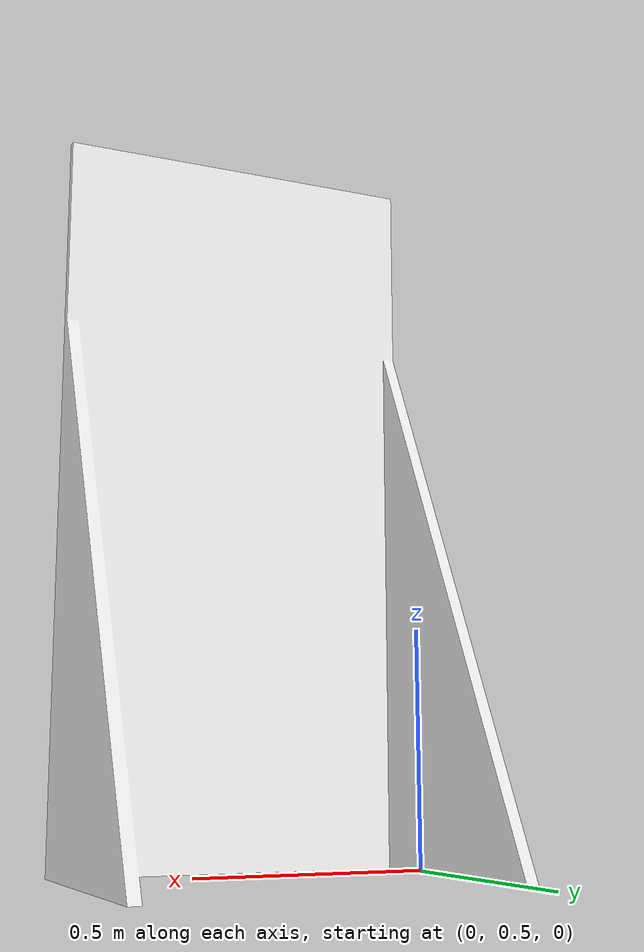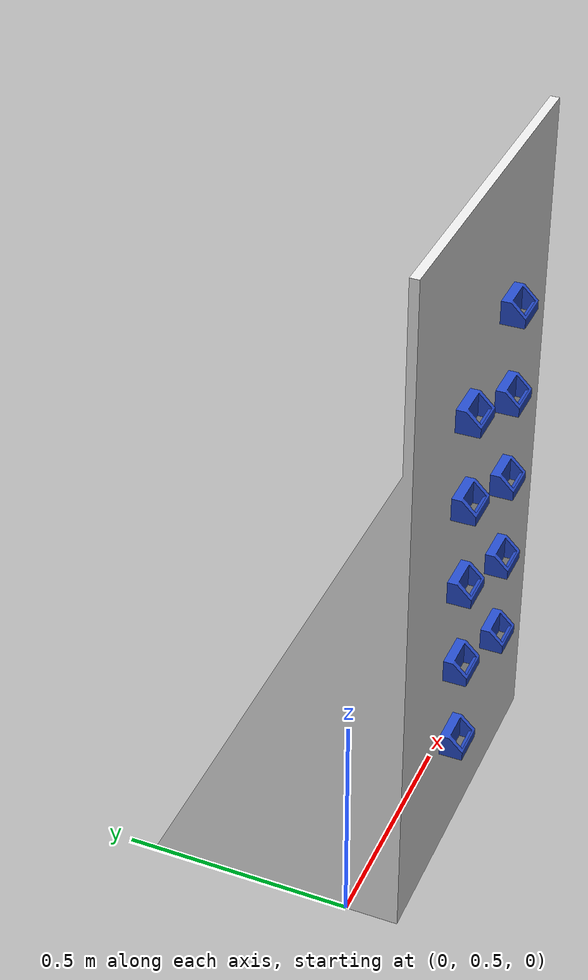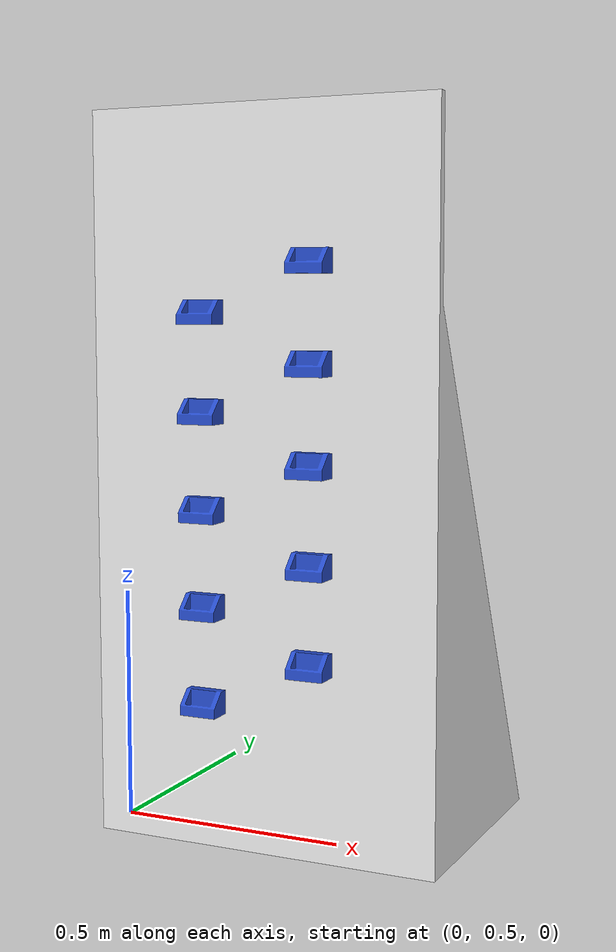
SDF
<?xml version="1.0" ?>
<sdf version="1.6">
  <model name="climbing_wall">
    <link name="wall">
      <inertial>
        <pose>0.381 0.472265 0.605557 0 0 0</pose>
        <mass>288.901</mass>
        <inertia>
          <ixx>56.1647</ixx>
          <ixy>2.94838e-15</ixy>
          <ixz>-0.00718802</ixz>
          <iyy>75.9579</iyy>
          <iyz>7.05155</iyz>
          <izz>28.5354</izz>
        </inertia>
      </inertial>

      <visual name="jug_hold_visual_1">
        <pose>0.501 0.386449 0.787 0 -0 0</pose>
        <geometry>
          <mesh>
            <uri>package://climbbot3_gz/models/climbing_wall/assets/jug_hold.stl</uri>
          </mesh>
        </geometry>
        <material>
          <script>
            <uri>file://media/materials/scripts/gazebo.material</uri>
            <name>Gazebo/Blue</name>
          </script>
          <ambient>0.231373 0.380392 0.705882 1.0</ambient>
        </material>
      </visual>
      <collision name="jug_hold_collision_1">
        <pose>0.501 0.386449 0.787 0 -0 0</pose>
        <geometry>
          <mesh>
            <uri>package://climbbot3_gz/models/climbing_wall/assets/jug_hold.stl</uri>
          </mesh>
        </geometry>
      </collision>

      <visual name="jug_hold_visual_2">
        <pose>0.501 0.386449 1.187 0 -0 0</pose>
        <geometry>
          <mesh>
            <uri>package://climbbot3_gz/models/climbing_wall/assets/jug_hold.stl</uri>
          </mesh>
        </geometry>
        <material>
          <script>
            <uri>file://media/materials/scripts/gazebo.material</uri>
            <name>Gazebo/Blue</name>
          </script>
          <ambient>0.231373 0.380392 0.705882 1.0</ambient>
        </material>
      </visual>
      <collision name="jug_hold_collision_2">
        <pose>0.501 0.386449 1.187 0 -0 0</pose>
        <geometry>
          <mesh>
            <uri>package://climbbot3_gz/models/climbing_wall/assets/jug_hold.stl</uri>
          </mesh>
        </geometry>
      </collision>

      <visual name="wall_visual">
        <pose>0 0.405499 0 0 -0 0</pose>
        <geometry>
          <mesh>
            <uri>package://climbbot3_gz/models/climbing_wall/assets/wall.stl</uri>
          </mesh>
        </geometry>
        <material>
          <script>
            <uri>file://media/materials/scripts/gazebo.material</uri>
            <name>Gazebo/White</name>
          </script>
          <ambient>0.917647 0.917647 0.917647 1.0</ambient>
        </material>
      </visual>
      <collision name="wall_collision">
        <pose>0 0.405499 0 0 -0 0</pose>
        <geometry>
          <mesh>
            <uri>package://climbbot3_gz/models/climbing_wall/assets/wall.stl</uri>
          </mesh>
        </geometry>
      </collision>

      <visual name="jug_hold_visual_3">
        <pose>0.261 0.386449 0.687 0 -0 0</pose>
        <geometry>
          <mesh>
            <uri>package://climbbot3_gz/models/climbing_wall/assets/jug_hold.stl</uri>
          </mesh>
        </geometry>
        <material>
          <script>
            <uri>file://media/materials/scripts/gazebo.material</uri>
            <name>Gazebo/Blue</name>
          </script>
          <ambient>0.231373 0.380392 0.705882 1.0</ambient>
        </material>
      </visual>
      <collision name="jug_hold_collision_3">
        <pose>0.261 0.386449 0.687 0 -0 0</pose>
        <geometry>
          <mesh>
            <uri>package://climbbot3_gz/models/climbing_wall/assets/jug_hold.stl</uri>
          </mesh>
        </geometry>
      </collision>

      <visual name="jug_hold_visual_4">
        <pose>0.261 0.386449 0.287 0 -0 0</pose>
        <geometry>
          <mesh>
            <uri>package://climbbot3_gz/models/climbing_wall/assets/jug_hold.stl</uri>
          </mesh>
        </geometry>
        <material>
          <script>
            <uri>file://media/materials/scripts/gazebo.material</uri>
            <name>Gazebo/Blue</name>
          </script>
          <ambient>0.231373 0.380392 0.705882 1.0</ambient>
        </material>
      </visual>
      <collision name="jug_hold_collision_4">
        <pose>0.261 0.386449 0.287 0 -0 0</pose>
        <geometry>
          <mesh>
            <uri>package://climbbot3_gz/models/climbing_wall/assets/jug_hold.stl</uri>
          </mesh>
        </geometry>
      </collision>

      <visual name="jug_hold_visual_5">
        <pose>0.501 0.386449 0.587 0 -0 0</pose>
        <geometry>
          <mesh>
            <uri>package://climbbot3_gz/models/climbing_wall/assets/jug_hold.stl</uri>
          </mesh>
        </geometry>
        <material>
          <script>
            <uri>file://media/materials/scripts/gazebo.material</uri>
            <name>Gazebo/Blue</name>
          </script>
          <ambient>0.231373 0.380392 0.705882 1.0</ambient>
        </material>
      </visual>
      <collision name="jug_hold_collision_5">
        <pose>0.501 0.386449 0.587 0 -0 0</pose>
        <geometry>
          <mesh>
            <uri>package://climbbot3_gz/models/climbing_wall/assets/jug_hold.stl</uri>
          </mesh>
        </geometry>
      </collision>

      <visual name="jug_hold_visual_6">
        <pose>0.501 0.386449 0.387 0 -0 0</pose>
        <geometry>
          <mesh>
            <uri>package://climbbot3_gz/models/climbing_wall/assets/jug_hold.stl</uri>
          </mesh>
        </geometry>
        <material>
          <script>
            <uri>file://media/materials/scripts/gazebo.material</uri>
            <name>Gazebo/Blue</name>
          </script>
          <ambient>0.231373 0.380392 0.705882 1.0</ambient>
        </material>
      </visual>
      <collision name="jug_hold_collision_6">
        <pose>0.501 0.386449 0.387 0 -0 0</pose>
        <geometry>
          <mesh>
            <uri>package://climbbot3_gz/models/climbing_wall/assets/jug_hold.stl</uri>
          </mesh>
        </geometry>
      </collision>

      <visual name="jug_hold_visual_7">
        <pose>0.261 0.386449 0.487 0 -0 0</pose>
        <geometry>
          <mesh>
            <uri>package://climbbot3_gz/models/climbing_wall/assets/jug_hold.stl</uri>
          </mesh>
        </geometry>
        <material>
          <script>
            <uri>file://media/materials/scripts/gazebo.material</uri>
            <name>Gazebo/Blue</name>
          </script>
          <ambient>0.231373 0.380392 0.705882 1.0</ambient>
        </material>
      </visual>
      <collision name="jug_hold_collision_7">
        <pose>0.261 0.386449 0.487 0 -0 0</pose>
        <geometry>
          <mesh>
            <uri>package://climbbot3_gz/models/climbing_wall/assets/jug_hold.stl</uri>
          </mesh>
        </geometry>
      </collision>

      <visual name="jug_hold_visual_8">
        <pose>0.261 0.386449 1.087 0 -0 0</pose>
        <geometry>
          <mesh>
            <uri>package://climbbot3_gz/models/climbing_wall/assets/jug_hold.stl</uri>
          </mesh>
        </geometry>
        <material>
          <script>
            <uri>file://media/materials/scripts/gazebo.material</uri>
            <name>Gazebo/Blue</name>
          </script>
          <ambient>0.231373 0.380392 0.705882 1.0</ambient>
        </material>
      </visual>
      <collision name="jug_hold_collision_8">
        <pose>0.261 0.386449 1.087 0 -0 0</pose>
        <geometry>
          <mesh>
            <uri>package://climbbot3_gz/models/climbing_wall/assets/jug_hold.stl</uri>
          </mesh>
        </geometry>
      </collision>

      <visual name="jug_hold_visual_9">
        <pose>0.501 0.386449 0.987 0 -0 0</pose>
        <geometry>
          <mesh>
            <uri>package://climbbot3_gz/models/climbing_wall/assets/jug_hold.stl</uri>
          </mesh>
        </geometry>
        <material>
          <script>
            <uri>file://media/materials/scripts/gazebo.material</uri>
            <name>Gazebo/Blue</name>
          </script>
          <ambient>0.231373 0.380392 0.705882 1.0</ambient>
        </material>
      </visual>
      <collision name="jug_hold_collision_9">
        <pose>0.501 0.386449 0.987 0 -0 0</pose>
        <geometry>
          <mesh>
            <uri>package://climbbot3_gz/models/climbing_wall/assets/jug_hold.stl</uri>
          </mesh>
        </geometry>
      </collision>

      <visual name="jug_hold_visual_10">
        <pose>0.261 0.386449 0.887 0 -0 0</pose>
        <geometry>
          <mesh>
            <uri>package://climbbot3_gz/models/climbing_wall/assets/jug_hold.stl</uri>
          </mesh>
        </geometry>
        <material>
          <script>
            <uri>file://media/materials/scripts/gazebo.material</uri>
            <name>Gazebo/Blue</name>
          </script>
          <ambient>0.231373 0.380392 0.705882 1.0</ambient>
        </material>
      </visual>
      <collision name="jug_hold_collision_10">
        <pose>0.261 0.386449 0.887 0 -0 0</pose>
        <geometry>
          <mesh>
            <uri>package://climbbot3_gz/models/climbing_wall/assets/jug_hold.stl</uri>
          </mesh>
        </geometry>
      </collision>
    </link>

    <gazebo reference="wall">
      <static>true</static>
    </gazebo>
  </model>
</sdf>
